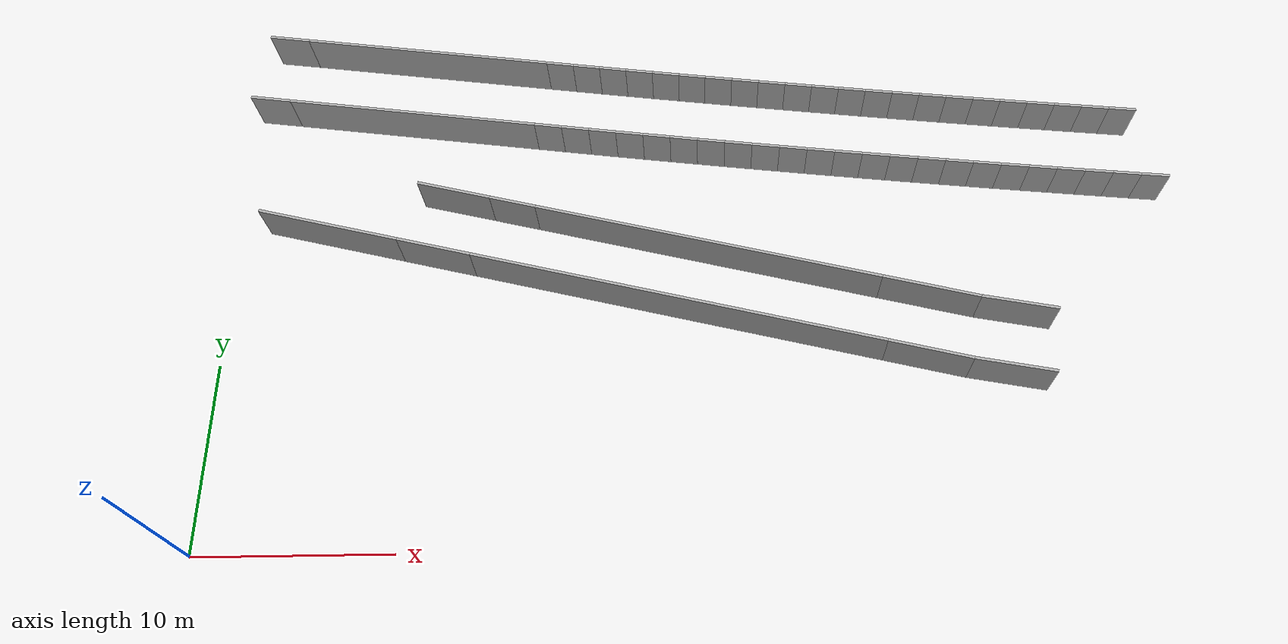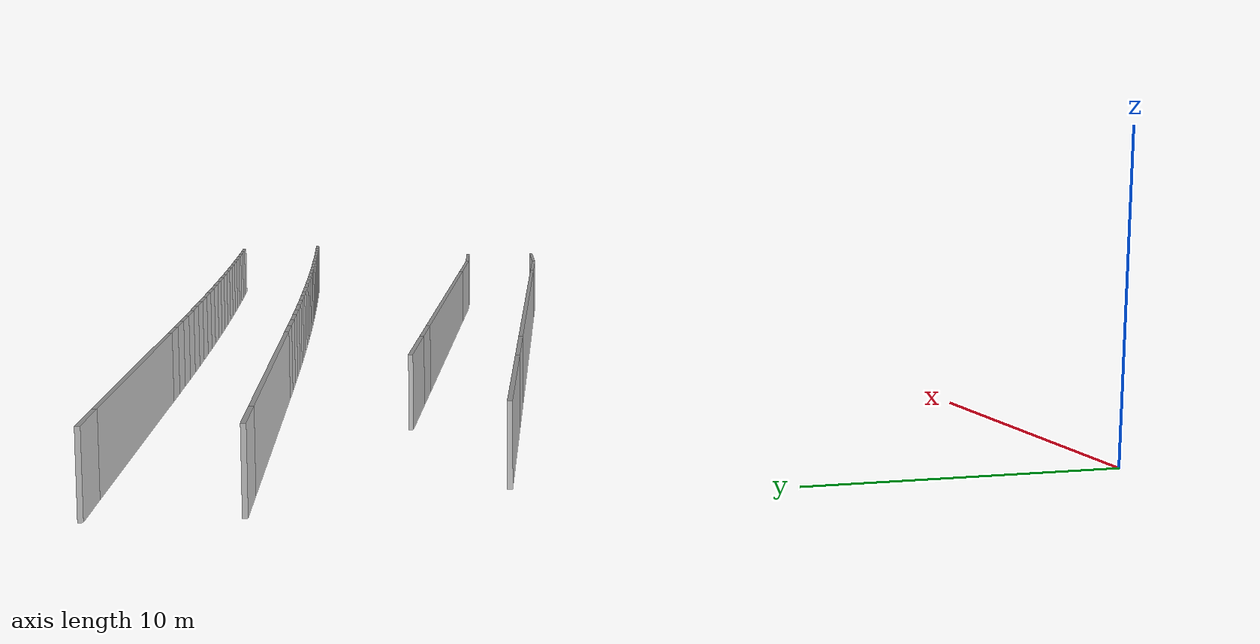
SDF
<?xml version="1.0" ?>
<sdf version="1.6">
  <model name="sps_2303">
    <pose frame="">0 0 0 0 -0 0</pose>
    <static>1</static>
    <self_collide>0</self_collide>
    <allow_auto_disable>0</allow_auto_disable>
    <link name="Wall52">
      <kinematic>0</kinematic>
      <gravity>1</gravity>
      <self_collide>0</self_collide>
      <collision name="collision">
        <geometry>
          <box>
            <size>4.38192 0.15 2.5</size>
          </box>
        </geometry>
        <pose frame="">0 0 0 0 -0 0</pose>
      </collision>
      <visual name="visual">
        <geometry>
          <box>
            <size>4.38192 0.15 2.5</size>
          </box>
        </geometry>
        <pose frame="">0 0 0 0 -0 0</pose>
        <cast_shadows>1</cast_shadows>
        <transparency>0.0</transparency>
      </visual>
      <pose frame="">36.597 9.30323 1.25 0 -0 2.9005</pose>
    </link>
    <link name="Wall53">
      <kinematic>0</kinematic>
      <gravity>1</gravity>
      <self_collide>0</self_collide>
      <collision name="collision">
        <geometry>
          <box>
            <size>22.0786 0.15 2.5</size>
          </box>
        </geometry>
        <pose frame="">0 0 0 0 -0 0</pose>
      </collision>
      <visual name="visual">
        <geometry>
          <box>
            <size>22.0786 0.15 2.5</size>
          </box>
        </geometry>
        <pose frame="">0 0 0 0 -0 0</pose>
        <cast_shadows>1</cast_shadows>
        <transparency>0.0</transparency>
      </visual>
      <pose frame="">23.7494 12.4621 1.25 0 -0 2.9005</pose>
    </link>
    <link name="Wall201">
      <kinematic>0</kinematic>
      <gravity>1</gravity>
      <self_collide>0</self_collide>
      <collision name="collision">
        <geometry>
          <box>
            <size>7.68454 0.15 2.5</size>
          </box>
        </geometry>
        <pose frame="">0 0 0 0 -0 0</pose>
      </collision>
      <visual name="visual">
        <geometry>
          <box>
            <size>7.68454 0.15 2.5</size>
          </box>
        </geometry>
        <pose frame="">0 0 0 0 -0 0</pose>
        <cast_shadows>1</cast_shadows>
        <transparency>0.0</transparency>
      </visual>
      <pose frame="">5.3868 16.9762 1.25 0 -0 2.90063</pose>
    </link>
    <link name="Wall234">
      <kinematic>0</kinematic>
      <gravity>1</gravity>
      <self_collide>0</self_collide>
      <collision name="collision">
        <geometry>
          <box>
            <size>13.7202 0.15 2.5</size>
          </box>
        </geometry>
        <pose frame="">0 0 0 0 -0 0</pose>
      </collision>
      <visual name="visual">
        <geometry>
          <box>
            <size>13.7202 0.15 2.5</size>
          </box>
        </geometry>
        <pose frame="">0 0 0 0 -0 0</pose>
        <cast_shadows>1</cast_shadows>
        <transparency>0.0</transparency>
      </visual>
      <pose frame="">9.80376 28.0759 1.25 0 0 -0.130338</pose>
    </link>
    <link name="Wall235">
      <kinematic>0</kinematic>
      <gravity>1</gravity>
      <self_collide>0</self_collide>
      <collision name="collision">
        <geometry>
          <box>
            <size>4.00645 0.15 2.5</size>
          </box>
        </geometry>
        <pose frame="">0 0 0 0 -0 0</pose>
      </collision>
      <visual name="visual">
        <geometry>
          <box>
            <size>4.00645 0.15 2.5</size>
          </box>
        </geometry>
        <pose frame="">0 0 0 0 -0 0</pose>
        <cast_shadows>1</cast_shadows>
        <transparency>0.0</transparency>
      </visual>
      <pose frame="">41.4386 11.8258 1.25 0 0 -0.188573</pose>
    </link>
    <link name="Wall302">
      <kinematic>0</kinematic>
      <gravity>1</gravity>
      <self_collide>0</self_collide>
      <collision name="collision">
        <geometry>
          <box>
            <size>4.02802 0.15 2.5</size>
          </box>
        </geometry>
        <pose frame="">0 0 0 0 -0 0</pose>
      </collision>
      <visual name="visual">
        <geometry>
          <box>
            <size>4.02802 0.15 2.5</size>
          </box>
        </geometry>
        <pose frame="">0 0 0 0 -0 0</pose>
        <cast_shadows>1</cast_shadows>
        <transparency>0.0</transparency>
      </visual>
      <pose frame="">11.9095 18.9778 1.25 0 0 -0.240793</pose>
    </link>
    <link name="Wall453">
      <kinematic>0</kinematic>
      <gravity>1</gravity>
      <self_collide>0</self_collide>
      <collision name="collision">
        <geometry>
          <box>
            <size>2.53132 0.15 2.5</size>
          </box>
        </geometry>
        <pose frame="">0 0 0 0 -0 0</pose>
      </collision>
      <visual name="visual">
        <geometry>
          <box>
            <size>2.53132 0.15 2.5</size>
          </box>
        </geometry>
        <pose frame="">0 0 0 0 -0 0</pose>
        <cast_shadows>1</cast_shadows>
        <transparency>0.0</transparency>
      </visual>
      <pose frame="">15.0945 18.1953 1.25 0 0 -0.24111</pose>
    </link>
    <link name="Wall454">
      <kinematic>0</kinematic>
      <gravity>1</gravity>
      <self_collide>0</self_collide>
      <collision name="collision">
        <geometry>
          <box>
            <size>18.6864 0.15 2.5</size>
          </box>
        </geometry>
        <pose frame="">0 0 0 0 -0 0</pose>
      </collision>
      <visual name="visual">
        <geometry>
          <box>
            <size>18.6864 0.15 2.5</size>
          </box>
        </geometry>
        <pose frame="">0 0 0 0 -0 0</pose>
        <cast_shadows>1</cast_shadows>
        <transparency>0.0</transparency>
      </visual>
      <pose frame="">25.3965 15.6621 1.25 0 0 -0.24111</pose>
    </link>
    <link name="Wall455">
      <kinematic>0</kinematic>
      <gravity>1</gravity>
      <self_collide>0</self_collide>
      <collision name="collision">
        <geometry>
          <box>
            <size>5.15039 0.15 2.5</size>
          </box>
        </geometry>
        <pose frame="">0 0 0 0 -0 0</pose>
      </collision>
      <visual name="visual">
        <geometry>
          <box>
            <size>5.15039 0.15 2.5</size>
          </box>
        </geometry>
        <pose frame="">0 0 0 0 -0 0</pose>
        <cast_shadows>1</cast_shadows>
        <transparency>0.0</transparency>
      </visual>
      <pose frame="">36.9701 12.8162 1.25 0 0 -0.24111</pose>
    </link>
    <link name="Wall557">
      <kinematic>0</kinematic>
      <gravity>1</gravity>
      <self_collide>0</self_collide>
      <collision name="collision">
        <geometry>
          <box>
            <size>4.02779 0.15 2.5</size>
          </box>
        </geometry>
        <pose frame="">0 0 0 0 -0 0</pose>
      </collision>
      <visual name="visual">
        <geometry>
          <box>
            <size>4.02779 0.15 2.5</size>
          </box>
        </geometry>
        <pose frame="">0 0 0 0 -0 0</pose>
        <cast_shadows>1</cast_shadows>
        <transparency>0.0</transparency>
      </visual>
      <pose frame="">11.0738 15.5786 1.25 0 -0 2.90058</pose>
    </link>
    <link name="Wall558">
      <kinematic>0</kinematic>
      <gravity>1</gravity>
      <self_collide>0</self_collide>
      <collision name="collision">
        <geometry>
          <box>
            <size>4.19529 0.15 2.5</size>
          </box>
        </geometry>
        <pose frame="">0 0 0 0 -0 0</pose>
      </collision>
      <visual name="visual">
        <geometry>
          <box>
            <size>4.19529 0.15 2.5</size>
          </box>
        </geometry>
        <pose frame="">0 0 0 0 -0 0</pose>
        <cast_shadows>1</cast_shadows>
        <transparency>0.0</transparency>
      </visual>
      <pose frame="">40.7851 8.38719 1.25 0 -0 2.95317</pose>
    </link>
    <link name="Wall629">
      <kinematic>0</kinematic>
      <gravity>1</gravity>
      <self_collide>0</self_collide>
      <collision name="collision">
        <geometry>
          <box>
            <size>13.7199 0.15 2.5</size>
          </box>
        </geometry>
        <pose frame="">0 0 0 0 -0 0</pose>
      </collision>
      <visual name="visual">
        <geometry>
          <box>
            <size>13.7199 0.15 2.5</size>
          </box>
        </geometry>
        <pose frame="">0 0 0 0 -0 0</pose>
        <cast_shadows>1</cast_shadows>
        <transparency>0.0</transparency>
      </visual>
      <pose frame="">9.26546 23.9708 1.25 0 -0 3.0113</pose>
    </link>
    <link name="Wall3582">
      <kinematic>0</kinematic>
      <gravity>1</gravity>
      <self_collide>0</self_collide>
      <collision name="collision">
        <geometry>
          <box>
            <size>1.49649 0.15 2.5</size>
          </box>
        </geometry>
        <pose frame="">0 0 0 0 -0 0</pose>
      </collision>
      <visual name="visual">
        <geometry>
          <box>
            <size>1.49649 0.15 2.5</size>
          </box>
        </geometry>
        <pose frame="">0 0 0 0 -0 0</pose>
        <cast_shadows>1</cast_shadows>
        <transparency>0.0</transparency>
      </visual>
      <pose frame="">17.3476 27.0869 1.25 0 0 -0.130517</pose>
    </link>
    <link name="Wall3583">
      <kinematic>0</kinematic>
      <gravity>1</gravity>
      <self_collide>0</self_collide>
      <collision name="collision">
        <geometry>
          <box>
            <size>1.49658 0.15 2.5</size>
          </box>
        </geometry>
        <pose frame="">0 0 0 0 -0 0</pose>
      </collision>
      <visual name="visual">
        <geometry>
          <box>
            <size>1.49658 0.15 2.5</size>
          </box>
        </geometry>
        <pose frame="">0 0 0 0 -0 0</pose>
        <cast_shadows>1</cast_shadows>
        <transparency>0.0</transparency>
      </visual>
      <pose frame="">18.8315 26.8934 1.25 0 0 -0.128781</pose>
    </link>
    <link name="Wall3584">
      <kinematic>0</kinematic>
      <gravity>1</gravity>
      <self_collide>0</self_collide>
      <collision name="collision">
        <geometry>
          <box>
            <size>1.49655 0.15 2.5</size>
          </box>
        </geometry>
        <pose frame="">0 0 0 0 -0 0</pose>
      </collision>
      <visual name="visual">
        <geometry>
          <box>
            <size>1.49655 0.15 2.5</size>
          </box>
        </geometry>
        <pose frame="">0 0 0 0 -0 0</pose>
        <cast_shadows>1</cast_shadows>
        <transparency>0.0</transparency>
      </visual>
      <pose frame="">20.3158 26.7023 1.25 0 0 -0.127304</pose>
    </link>
    <link name="Wall3585">
      <kinematic>0</kinematic>
      <gravity>1</gravity>
      <self_collide>0</self_collide>
      <collision name="collision">
        <geometry>
          <box>
            <size>1.49645 0.15 2.5</size>
          </box>
        </geometry>
        <pose frame="">0 0 0 0 -0 0</pose>
      </collision>
      <visual name="visual">
        <geometry>
          <box>
            <size>1.49645 0.15 2.5</size>
          </box>
        </geometry>
        <pose frame="">0 0 0 0 -0 0</pose>
        <cast_shadows>1</cast_shadows>
        <transparency>0.0</transparency>
      </visual>
      <pose frame="">21.8004 26.5134 1.25 0 0 -0.125832</pose>
    </link>
    <link name="Wall3586">
      <kinematic>0</kinematic>
      <gravity>1</gravity>
      <self_collide>0</self_collide>
      <collision name="collision">
        <geometry>
          <box>
            <size>1.49652 0.15 2.5</size>
          </box>
        </geometry>
        <pose frame="">0 0 0 0 -0 0</pose>
      </collision>
      <visual name="visual">
        <geometry>
          <box>
            <size>1.49652 0.15 2.5</size>
          </box>
        </geometry>
        <pose frame="">0 0 0 0 -0 0</pose>
        <cast_shadows>1</cast_shadows>
        <transparency>0.0</transparency>
      </visual>
      <pose frame="">23.2852 26.3268 1.25 0 0 -0.124223</pose>
    </link>
    <link name="Wall3587">
      <kinematic>0</kinematic>
      <gravity>1</gravity>
      <self_collide>0</self_collide>
      <collision name="collision">
        <geometry>
          <box>
            <size>1.49664 0.15 2.5</size>
          </box>
        </geometry>
        <pose frame="">0 0 0 0 -0 0</pose>
      </collision>
      <visual name="visual">
        <geometry>
          <box>
            <size>1.49664 0.15 2.5</size>
          </box>
        </geometry>
        <pose frame="">0 0 0 0 -0 0</pose>
        <cast_shadows>1</cast_shadows>
        <transparency>0.0</transparency>
      </visual>
      <pose frame="">24.7704 26.1426 1.25 0 0 -0.122569</pose>
    </link>
    <link name="Wall3588">
      <kinematic>0</kinematic>
      <gravity>1</gravity>
      <self_collide>0</self_collide>
      <collision name="collision">
        <geometry>
          <box>
            <size>1.49656 0.15 2.5</size>
          </box>
        </geometry>
        <pose frame="">0 0 0 0 -0 0</pose>
      </collision>
      <visual name="visual">
        <geometry>
          <box>
            <size>1.49656 0.15 2.5</size>
          </box>
        </geometry>
        <pose frame="">0 0 0 0 -0 0</pose>
        <cast_shadows>1</cast_shadows>
        <transparency>0.0</transparency>
      </visual>
      <pose frame="">26.2559 25.9607 1.25 0 0 -0.121097</pose>
    </link>
    <link name="Wall3589">
      <kinematic>0</kinematic>
      <gravity>1</gravity>
      <self_collide>0</self_collide>
      <collision name="collision">
        <geometry>
          <box>
            <size>1.49663 0.15 2.5</size>
          </box>
        </geometry>
        <pose frame="">0 0 0 0 -0 0</pose>
      </collision>
      <visual name="visual">
        <geometry>
          <box>
            <size>1.49663 0.15 2.5</size>
          </box>
        </geometry>
        <pose frame="">0 0 0 0 -0 0</pose>
        <cast_shadows>1</cast_shadows>
        <transparency>0.0</transparency>
      </visual>
      <pose frame="">27.7417 25.7811 1.25 0 0 -0.119489</pose>
    </link>
    <link name="Wall3590">
      <kinematic>0</kinematic>
      <gravity>1</gravity>
      <self_collide>0</self_collide>
      <collision name="collision">
        <geometry>
          <box>
            <size>1.49641 0.15 2.5</size>
          </box>
        </geometry>
        <pose frame="">0 0 0 0 -0 0</pose>
      </collision>
      <visual name="visual">
        <geometry>
          <box>
            <size>1.49641 0.15 2.5</size>
          </box>
        </geometry>
        <pose frame="">0 0 0 0 -0 0</pose>
        <cast_shadows>1</cast_shadows>
        <transparency>0.0</transparency>
      </visual>
      <pose frame="">29.2277 25.6039 1.25 0 0 -0.117905</pose>
    </link>
    <link name="Wall3591">
      <kinematic>0</kinematic>
      <gravity>1</gravity>
      <self_collide>0</self_collide>
      <collision name="collision">
        <geometry>
          <box>
            <size>1.49649 0.15 2.5</size>
          </box>
        </geometry>
        <pose frame="">0 0 0 0 -0 0</pose>
      </collision>
      <visual name="visual">
        <geometry>
          <box>
            <size>1.49649 0.15 2.5</size>
          </box>
        </geometry>
        <pose frame="">0 0 0 0 -0 0</pose>
        <cast_shadows>1</cast_shadows>
        <transparency>0.0</transparency>
      </visual>
      <pose frame="">30.7139 25.4291 1.25 0 0 -0.116256</pose>
    </link>
    <link name="Wall3592">
      <kinematic>0</kinematic>
      <gravity>1</gravity>
      <self_collide>0</self_collide>
      <collision name="collision">
        <geometry>
          <box>
            <size>1.49642 0.15 2.5</size>
          </box>
        </geometry>
        <pose frame="">0 0 0 0 -0 0</pose>
      </collision>
      <visual name="visual">
        <geometry>
          <box>
            <size>1.49642 0.15 2.5</size>
          </box>
        </geometry>
        <pose frame="">0 0 0 0 -0 0</pose>
        <cast_shadows>1</cast_shadows>
        <transparency>0.0</transparency>
      </visual>
      <pose frame="">32.2003 25.2566 1.25 0 0 -0.114783</pose>
    </link>
    <link name="Wall3593">
      <kinematic>0</kinematic>
      <gravity>1</gravity>
      <self_collide>0</self_collide>
      <collision name="collision">
        <geometry>
          <box>
            <size>1.49663 0.15 2.5</size>
          </box>
        </geometry>
        <pose frame="">0 0 0 0 -0 0</pose>
      </collision>
      <visual name="visual">
        <geometry>
          <box>
            <size>1.49663 0.15 2.5</size>
          </box>
        </geometry>
        <pose frame="">0 0 0 0 -0 0</pose>
        <cast_shadows>1</cast_shadows>
        <transparency>0.0</transparency>
      </visual>
      <pose frame="">33.6872 25.0864 1.25 0 0 -0.113166</pose>
    </link>
    <link name="Wall3594">
      <kinematic>0</kinematic>
      <gravity>1</gravity>
      <self_collide>0</self_collide>
      <collision name="collision">
        <geometry>
          <box>
            <size>1.49649 0.15 2.5</size>
          </box>
        </geometry>
        <pose frame="">0 0 0 0 -0 0</pose>
      </collision>
      <visual name="visual">
        <geometry>
          <box>
            <size>1.49649 0.15 2.5</size>
          </box>
        </geometry>
        <pose frame="">0 0 0 0 -0 0</pose>
        <cast_shadows>1</cast_shadows>
        <transparency>0.0</transparency>
      </visual>
      <pose frame="">35.1743 24.9186 1.25 0 0 -0.111576</pose>
    </link>
    <link name="Wall3595">
      <kinematic>0</kinematic>
      <gravity>1</gravity>
      <self_collide>0</self_collide>
      <collision name="collision">
        <geometry>
          <box>
            <size>1.49664 0.15 2.5</size>
          </box>
        </geometry>
        <pose frame="">0 0 0 0 -0 0</pose>
      </collision>
      <visual name="visual">
        <geometry>
          <box>
            <size>1.49664 0.15 2.5</size>
          </box>
        </geometry>
        <pose frame="">0 0 0 0 -0 0</pose>
        <cast_shadows>1</cast_shadows>
        <transparency>0.0</transparency>
      </visual>
      <pose frame="">36.6617 24.7532 1.25 0 0 -0.109923</pose>
    </link>
    <link name="Wall3596">
      <kinematic>0</kinematic>
      <gravity>1</gravity>
      <self_collide>0</self_collide>
      <collision name="collision">
        <geometry>
          <box>
            <size>1.49634 0.15 2.5</size>
          </box>
        </geometry>
        <pose frame="">0 0 0 0 -0 0</pose>
      </collision>
      <visual name="visual">
        <geometry>
          <box>
            <size>1.49634 0.15 2.5</size>
          </box>
        </geometry>
        <pose frame="">0 0 0 0 -0 0</pose>
        <cast_shadows>1</cast_shadows>
        <transparency>0.0</transparency>
      </visual>
      <pose frame="">38.1493 24.5901 1.25 0 0 -0.108468</pose>
    </link>
    <link name="Wall3597">
      <kinematic>0</kinematic>
      <gravity>1</gravity>
      <self_collide>0</self_collide>
      <collision name="collision">
        <geometry>
          <box>
            <size>1.49655 0.15 2.5</size>
          </box>
        </geometry>
        <pose frame="">0 0 0 0 -0 0</pose>
      </collision>
      <visual name="visual">
        <geometry>
          <box>
            <size>1.49655 0.15 2.5</size>
          </box>
        </geometry>
        <pose frame="">0 0 0 0 -0 0</pose>
        <cast_shadows>1</cast_shadows>
        <transparency>0.0</transparency>
      </visual>
      <pose frame="">39.637 24.4294 1.25 0 0 -0.10673</pose>
    </link>
    <link name="Wall3598">
      <kinematic>0</kinematic>
      <gravity>1</gravity>
      <self_collide>0</self_collide>
      <collision name="collision">
        <geometry>
          <box>
            <size>1.4965 0.15 2.5</size>
          </box>
        </geometry>
        <pose frame="">0 0 0 0 -0 0</pose>
      </collision>
      <visual name="visual">
        <geometry>
          <box>
            <size>1.4965 0.15 2.5</size>
          </box>
        </geometry>
        <pose frame="">0 0 0 0 -0 0</pose>
        <cast_shadows>1</cast_shadows>
        <transparency>0.0</transparency>
      </visual>
      <pose frame="">41.1252 24.2711 1.25 0 0 -0.105216</pose>
    </link>
    <link name="Wall3599">
      <kinematic>0</kinematic>
      <gravity>1</gravity>
      <self_collide>0</self_collide>
      <collision name="collision">
        <geometry>
          <box>
            <size>1.49662 0.15 2.5</size>
          </box>
        </geometry>
        <pose frame="">0 0 0 0 -0 0</pose>
      </collision>
      <visual name="visual">
        <geometry>
          <box>
            <size>1.49662 0.15 2.5</size>
          </box>
        </geometry>
        <pose frame="">0 0 0 0 -0 0</pose>
        <cast_shadows>1</cast_shadows>
        <transparency>0.0</transparency>
      </visual>
      <pose frame="">42.6136 24.1151 1.25 0 0 -0.10365</pose>
    </link>
    <link name="Wall3600">
      <kinematic>0</kinematic>
      <gravity>1</gravity>
      <self_collide>0</self_collide>
      <collision name="collision">
        <geometry>
          <box>
            <size>1.49655 0.15 2.5</size>
          </box>
        </geometry>
        <pose frame="">0 0 0 0 -0 0</pose>
      </collision>
      <visual name="visual">
        <geometry>
          <box>
            <size>1.49655 0.15 2.5</size>
          </box>
        </geometry>
        <pose frame="">0 0 0 0 -0 0</pose>
        <cast_shadows>1</cast_shadows>
        <transparency>0.0</transparency>
      </visual>
      <pose frame="">44.1023 23.9615 1.25 0 0 -0.102014</pose>
    </link>
    <link name="Wall3601">
      <kinematic>0</kinematic>
      <gravity>1</gravity>
      <self_collide>0</self_collide>
      <collision name="collision">
        <geometry>
          <box>
            <size>1.49656 0.15 2.5</size>
          </box>
        </geometry>
        <pose frame="">0 0 0 0 -0 0</pose>
      </collision>
      <visual name="visual">
        <geometry>
          <box>
            <size>1.49656 0.15 2.5</size>
          </box>
        </geometry>
        <pose frame="">0 0 0 0 -0 0</pose>
        <cast_shadows>1</cast_shadows>
        <transparency>0.0</transparency>
      </visual>
      <pose frame="">45.5911 23.8102 1.25 0 0 -0.100497</pose>
    </link>
    <link name="Wall3602">
      <kinematic>0</kinematic>
      <gravity>1</gravity>
      <self_collide>0</self_collide>
      <collision name="collision">
        <geometry>
          <box>
            <size>1.4965 0.15 2.5</size>
          </box>
        </geometry>
        <pose frame="">0 0 0 0 -0 0</pose>
      </collision>
      <visual name="visual">
        <geometry>
          <box>
            <size>1.4965 0.15 2.5</size>
          </box>
        </geometry>
        <pose frame="">0 0 0 0 -0 0</pose>
        <cast_shadows>1</cast_shadows>
        <transparency>0.0</transparency>
      </visual>
      <pose frame="">47.0803 23.6613 1.25 0 0 -0.0988205</pose>
    </link>
    <link name="Wall3603">
      <kinematic>0</kinematic>
      <gravity>1</gravity>
      <self_collide>0</self_collide>
      <collision name="collision">
        <geometry>
          <box>
            <size>1.49648 0.15 2.5</size>
          </box>
        </geometry>
        <pose frame="">0 0 0 0 -0 0</pose>
      </collision>
      <visual name="visual">
        <geometry>
          <box>
            <size>1.49648 0.15 2.5</size>
          </box>
        </geometry>
        <pose frame="">0 0 0 0 -0 0</pose>
        <cast_shadows>1</cast_shadows>
        <transparency>0.0</transparency>
      </visual>
      <pose frame="">48.5695 23.5147 1.25 0 0 -0.0974284</pose>
    </link>
    <link name="Wall7357">
      <kinematic>0</kinematic>
      <gravity>1</gravity>
      <self_collide>0</self_collide>
      <collision name="collision">
        <geometry>
          <box>
            <size>1.50314 0.15 2.5</size>
          </box>
        </geometry>
        <pose frame="">0 0 0 0 -0 0</pose>
      </collision>
      <visual name="visual">
        <geometry>
          <box>
            <size>1.50314 0.15 2.5</size>
          </box>
        </geometry>
        <pose frame="">0 0 0 0 -0 0</pose>
        <cast_shadows>1</cast_shadows>
        <transparency>0.0</transparency>
      </visual>
      <pose frame="">16.8125 22.9817 1.25 0 0 -0.13051</pose>
    </link>
    <link name="Wall7358">
      <kinematic>0</kinematic>
      <gravity>1</gravity>
      <self_collide>0</self_collide>
      <collision name="collision">
        <geometry>
          <box>
            <size>1.50309 0.15 2.5</size>
          </box>
        </geometry>
        <pose frame="">0 0 0 0 -0 0</pose>
      </collision>
      <visual name="visual">
        <geometry>
          <box>
            <size>1.50309 0.15 2.5</size>
          </box>
        </geometry>
        <pose frame="">0 0 0 0 -0 0</pose>
        <cast_shadows>1</cast_shadows>
        <transparency>0.0</transparency>
      </visual>
      <pose frame="">18.3029 22.7872 1.25 0 0 -0.128999</pose>
    </link>
    <link name="Wall7359">
      <kinematic>0</kinematic>
      <gravity>1</gravity>
      <self_collide>0</self_collide>
      <collision name="collision">
        <geometry>
          <box>
            <size>1.503 0.15 2.5</size>
          </box>
        </geometry>
        <pose frame="">0 0 0 0 -0 0</pose>
      </collision>
      <visual name="visual">
        <geometry>
          <box>
            <size>1.503 0.15 2.5</size>
          </box>
        </geometry>
        <pose frame="">0 0 0 0 -0 0</pose>
        <cast_shadows>1</cast_shadows>
        <transparency>0.0</transparency>
      </visual>
      <pose frame="">19.7937 22.5951 1.25 0 0 -0.127286</pose>
    </link>
    <link name="Wall7360">
      <kinematic>0</kinematic>
      <gravity>1</gravity>
      <self_collide>0</self_collide>
      <collision name="collision">
        <geometry>
          <box>
            <size>1.50306 0.15 2.5</size>
          </box>
        </geometry>
        <pose frame="">0 0 0 0 -0 0</pose>
      </collision>
      <visual name="visual">
        <geometry>
          <box>
            <size>1.50306 0.15 2.5</size>
          </box>
        </geometry>
        <pose frame="">0 0 0 0 -0 0</pose>
        <cast_shadows>1</cast_shadows>
        <transparency>0.0</transparency>
      </visual>
      <pose frame="">21.2847 22.4053 1.25 0 0 -0.125972</pose>
    </link>
    <link name="Wall7361">
      <kinematic>0</kinematic>
      <gravity>1</gravity>
      <self_collide>0</self_collide>
      <collision name="collision">
        <geometry>
          <box>
            <size>1.50297 0.15 2.5</size>
          </box>
        </geometry>
        <pose frame="">0 0 0 0 -0 0</pose>
      </collision>
      <visual name="visual">
        <geometry>
          <box>
            <size>1.50297 0.15 2.5</size>
          </box>
        </geometry>
        <pose frame="">0 0 0 0 -0 0</pose>
        <cast_shadows>1</cast_shadows>
        <transparency>0.0</transparency>
      </visual>
      <pose frame="">22.7759 22.2178 1.25 0 0 -0.124179</pose>
    </link>
    <link name="Wall7362">
      <kinematic>0</kinematic>
      <gravity>1</gravity>
      <self_collide>0</self_collide>
      <collision name="collision">
        <geometry>
          <box>
            <size>1.50329 0.15 2.5</size>
          </box>
        </geometry>
        <pose frame="">0 0 0 0 -0 0</pose>
      </collision>
      <visual name="visual">
        <geometry>
          <box>
            <size>1.50329 0.15 2.5</size>
          </box>
        </geometry>
        <pose frame="">0 0 0 0 -0 0</pose>
        <cast_shadows>1</cast_shadows>
        <transparency>0.0</transparency>
      </visual>
      <pose frame="">24.2676 22.0328 1.25 0 0 -0.122597</pose>
    </link>
    <link name="Wall7363">
      <kinematic>0</kinematic>
      <gravity>1</gravity>
      <self_collide>0</self_collide>
      <collision name="collision">
        <geometry>
          <box>
            <size>1.50301 0.15 2.5</size>
          </box>
        </geometry>
        <pose frame="">0 0 0 0 -0 0</pose>
      </collision>
      <visual name="visual">
        <geometry>
          <box>
            <size>1.50301 0.15 2.5</size>
          </box>
        </geometry>
        <pose frame="">0 0 0 0 -0 0</pose>
        <cast_shadows>1</cast_shadows>
        <transparency>0.0</transparency>
      </visual>
      <pose frame="">25.7596 21.8501 1.25 0 0 -0.121106</pose>
    </link>
    <link name="Wall7364">
      <kinematic>0</kinematic>
      <gravity>1</gravity>
      <self_collide>0</self_collide>
      <collision name="collision">
        <geometry>
          <box>
            <size>1.50297 0.15 2.5</size>
          </box>
        </geometry>
        <pose frame="">0 0 0 0 -0 0</pose>
      </collision>
      <visual name="visual">
        <geometry>
          <box>
            <size>1.50297 0.15 2.5</size>
          </box>
        </geometry>
        <pose frame="">0 0 0 0 -0 0</pose>
        <cast_shadows>1</cast_shadows>
        <transparency>0.0</transparency>
      </visual>
      <pose frame="">27.2518 21.6697 1.25 0 0 -0.119514</pose>
    </link>
    <link name="Wall7365">
      <kinematic>0</kinematic>
      <gravity>1</gravity>
      <self_collide>0</self_collide>
      <collision name="collision">
        <geometry>
          <box>
            <size>1.50323 0.15 2.5</size>
          </box>
        </geometry>
        <pose frame="">0 0 0 0 -0 0</pose>
      </collision>
      <visual name="visual">
        <geometry>
          <box>
            <size>1.50323 0.15 2.5</size>
          </box>
        </geometry>
        <pose frame="">0 0 0 0 -0 0</pose>
        <cast_shadows>1</cast_shadows>
        <transparency>0.0</transparency>
      </visual>
      <pose frame="">28.7443 21.4917 1.25 0 0 -0.117899</pose>
    </link>
    <link name="Wall7366">
      <kinematic>0</kinematic>
      <gravity>1</gravity>
      <self_collide>0</self_collide>
      <collision name="collision">
        <geometry>
          <box>
            <size>1.50295 0.15 2.5</size>
          </box>
        </geometry>
        <pose frame="">0 0 0 0 -0 0</pose>
      </collision>
      <visual name="visual">
        <geometry>
          <box>
            <size>1.50295 0.15 2.5</size>
          </box>
        </geometry>
        <pose frame="">0 0 0 0 -0 0</pose>
        <cast_shadows>1</cast_shadows>
        <transparency>0.0</transparency>
      </visual>
      <pose frame="">30.2371 21.3161 1.25 0 0 -0.116285</pose>
    </link>
    <link name="Wall7367">
      <kinematic>0</kinematic>
      <gravity>1</gravity>
      <self_collide>0</self_collide>
      <collision name="collision">
        <geometry>
          <box>
            <size>1.50322 0.15 2.5</size>
          </box>
        </geometry>
        <pose frame="">0 0 0 0 -0 0</pose>
      </collision>
      <visual name="visual">
        <geometry>
          <box>
            <size>1.50322 0.15 2.5</size>
          </box>
        </geometry>
        <pose frame="">0 0 0 0 -0 0</pose>
        <cast_shadows>1</cast_shadows>
        <transparency>0.0</transparency>
      </visual>
      <pose frame="">31.7302 21.1429 1.25 0 0 -0.11467</pose>
    </link>
    <link name="Wall7368">
      <kinematic>0</kinematic>
      <gravity>1</gravity>
      <self_collide>0</self_collide>
      <collision name="collision">
        <geometry>
          <box>
            <size>1.50303 0.15 2.5</size>
          </box>
        </geometry>
        <pose frame="">0 0 0 0 -0 0</pose>
      </collision>
      <visual name="visual">
        <geometry>
          <box>
            <size>1.50303 0.15 2.5</size>
          </box>
        </geometry>
        <pose frame="">0 0 0 0 -0 0</pose>
        <cast_shadows>1</cast_shadows>
        <transparency>0.0</transparency>
      </visual>
      <pose frame="">33.2235 20.972 1.25 0 0 -0.113213</pose>
    </link>
    <link name="Wall7369">
      <kinematic>0</kinematic>
      <gravity>1</gravity>
      <self_collide>0</self_collide>
      <collision name="collision">
        <geometry>
          <box>
            <size>1.50295 0.15 2.5</size>
          </box>
        </geometry>
        <pose frame="">0 0 0 0 -0 0</pose>
      </collision>
      <visual name="visual">
        <geometry>
          <box>
            <size>1.50295 0.15 2.5</size>
          </box>
        </geometry>
        <pose frame="">0 0 0 0 -0 0</pose>
        <cast_shadows>1</cast_shadows>
        <transparency>0.0</transparency>
      </visual>
      <pose frame="">34.717 20.8034 1.25 0 0 -0.111626</pose>
    </link>
    <link name="Wall7370">
      <kinematic>0</kinematic>
      <gravity>1</gravity>
      <self_collide>0</self_collide>
      <collision name="collision">
        <geometry>
          <box>
            <size>1.50326 0.15 2.5</size>
          </box>
        </geometry>
        <pose frame="">0 0 0 0 -0 0</pose>
      </collision>
      <visual name="visual">
        <geometry>
          <box>
            <size>1.50326 0.15 2.5</size>
          </box>
        </geometry>
        <pose frame="">0 0 0 0 -0 0</pose>
        <cast_shadows>1</cast_shadows>
        <transparency>0.0</transparency>
      </visual>
      <pose frame="">36.2109 20.6373 1.25 0 0 -0.109846</pose>
    </link>
    <link name="Wall7371">
      <kinematic>0</kinematic>
      <gravity>1</gravity>
      <self_collide>0</self_collide>
      <collision name="collision">
        <geometry>
          <box>
            <size>1.50302 0.15 2.5</size>
          </box>
        </geometry>
        <pose frame="">0 0 0 0 -0 0</pose>
      </collision>
      <visual name="visual">
        <geometry>
          <box>
            <size>1.50302 0.15 2.5</size>
          </box>
        </geometry>
        <pose frame="">0 0 0 0 -0 0</pose>
        <cast_shadows>1</cast_shadows>
        <transparency>0.0</transparency>
      </visual>
      <pose frame="">37.7051 20.4736 1.25 0 0 -0.108393</pose>
    </link>
    <link name="Wall7372">
      <kinematic>0</kinematic>
      <gravity>1</gravity>
      <self_collide>0</self_collide>
      <collision name="collision">
        <geometry>
          <box>
            <size>1.50301 0.15 2.5</size>
          </box>
        </geometry>
        <pose frame="">0 0 0 0 -0 0</pose>
      </collision>
      <visual name="visual">
        <geometry>
          <box>
            <size>1.50301 0.15 2.5</size>
          </box>
        </geometry>
        <pose frame="">0 0 0 0 -0 0</pose>
        <cast_shadows>1</cast_shadows>
        <transparency>0.0</transparency>
      </visual>
      <pose frame="">39.1995 20.3122 1.25 0 0 -0.106801</pose>
    </link>
    <link name="Wall7373">
      <kinematic>0</kinematic>
      <gravity>1</gravity>
      <self_collide>0</self_collide>
      <collision name="collision">
        <geometry>
          <box>
            <size>1.50305 0.15 2.5</size>
          </box>
        </geometry>
        <pose frame="">0 0 0 0 -0 0</pose>
      </collision>
      <visual name="visual">
        <geometry>
          <box>
            <size>1.50305 0.15 2.5</size>
          </box>
        </geometry>
        <pose frame="">0 0 0 0 -0 0</pose>
        <cast_shadows>1</cast_shadows>
        <transparency>0.0</transparency>
      </visual>
      <pose frame="">40.6941 20.1532 1.25 0 0 -0.105164</pose>
    </link>
    <link name="Wall7374">
      <kinematic>0</kinematic>
      <gravity>1</gravity>
      <self_collide>0</self_collide>
      <collision name="collision">
        <geometry>
          <box>
            <size>1.50313 0.15 2.5</size>
          </box>
        </geometry>
        <pose frame="">0 0 0 0 -0 0</pose>
      </collision>
      <visual name="visual">
        <geometry>
          <box>
            <size>1.50313 0.15 2.5</size>
          </box>
        </geometry>
        <pose frame="">0 0 0 0 -0 0</pose>
        <cast_shadows>1</cast_shadows>
        <transparency>0.0</transparency>
      </visual>
      <pose frame="">42.189 19.9965 1.25 0 0 -0.103689</pose>
    </link>
    <link name="Wall7375">
      <kinematic>0</kinematic>
      <gravity>1</gravity>
      <self_collide>0</self_collide>
      <collision name="collision">
        <geometry>
          <box>
            <size>1.50301 0.15 2.5</size>
          </box>
        </geometry>
        <pose frame="">0 0 0 0 -0 0</pose>
      </collision>
      <visual name="visual">
        <geometry>
          <box>
            <size>1.50301 0.15 2.5</size>
          </box>
        </geometry>
        <pose frame="">0 0 0 0 -0 0</pose>
        <cast_shadows>1</cast_shadows>
        <transparency>0.0</transparency>
      </visual>
      <pose frame="">43.6841 19.8421 1.25 0 0 -0.102105</pose>
    </link>
    <link name="Wall7376">
      <kinematic>0</kinematic>
      <gravity>1</gravity>
      <self_collide>0</self_collide>
      <collision name="collision">
        <geometry>
          <box>
            <size>1.50319 0.15 2.5</size>
          </box>
        </geometry>
        <pose frame="">0 0 0 0 -0 0</pose>
      </collision>
      <visual name="visual">
        <geometry>
          <box>
            <size>1.50319 0.15 2.5</size>
          </box>
        </geometry>
        <pose frame="">0 0 0 0 -0 0</pose>
        <cast_shadows>1</cast_shadows>
        <transparency>0.0</transparency>
      </visual>
      <pose frame="">45.1795 19.6901 1.25 0 0 -0.100501</pose>
    </link>
    <link name="Wall7377">
      <kinematic>0</kinematic>
      <gravity>1</gravity>
      <self_collide>0</self_collide>
      <collision name="collision">
        <geometry>
          <box>
            <size>1.50313 0.15 2.5</size>
          </box>
        </geometry>
        <pose frame="">0 0 0 0 -0 0</pose>
      </collision>
      <visual name="visual">
        <geometry>
          <box>
            <size>1.50313 0.15 2.5</size>
          </box>
        </geometry>
        <pose frame="">0 0 0 0 -0 0</pose>
        <cast_shadows>1</cast_shadows>
        <transparency>0.0</transparency>
      </visual>
      <pose frame="">46.6752 19.5405 1.25 0 0 -0.0988727</pose>
    </link>
    <link name="Wall7378">
      <kinematic>0</kinematic>
      <gravity>1</gravity>
      <self_collide>0</self_collide>
      <collision name="collision">
        <geometry>
          <box>
            <size>1.50308 0.15 2.5</size>
          </box>
        </geometry>
        <pose frame="">0 0 0 0 -0 0</pose>
      </collision>
      <visual name="visual">
        <geometry>
          <box>
            <size>1.50308 0.15 2.5</size>
          </box>
        </geometry>
        <pose frame="">0 0 0 0 -0 0</pose>
        <cast_shadows>1</cast_shadows>
        <transparency>0.0</transparency>
      </visual>
      <pose frame="">48.171 19.3933 1.25 0 0 -0.0973252</pose>
    </link>
    <link name="Wall7379">
      <kinematic>0</kinematic>
      <gravity>1</gravity>
      <self_collide>0</self_collide>
      <collision name="collision">
        <geometry>
          <box>
            <size>1.50309 0.15 2.5</size>
          </box>
        </geometry>
        <pose frame="">0 0 0 0 -0 0</pose>
      </collision>
      <visual name="visual">
        <geometry>
          <box>
            <size>1.50309 0.15 2.5</size>
          </box>
        </geometry>
        <pose frame="">0 0 0 0 -0 0</pose>
        <cast_shadows>1</cast_shadows>
        <transparency>0.0</transparency>
      </visual>
      <pose frame="">49.6671 19.2485 1.25 0 0 -0.0956524</pose>
    </link>
    <link name="Wall8193">
      <kinematic>0</kinematic>
      <gravity>1</gravity>
      <self_collide>0</self_collide>
      <collision name="collision">
        <geometry>
          <box>
            <size>2.22313 0.15 2.5</size>
          </box>
        </geometry>
        <pose frame="">0 0 0 0 -0 0</pose>
      </collision>
      <visual name="visual">
        <geometry>
          <box>
            <size>2.22313 0.15 2.5</size>
          </box>
        </geometry>
        <pose frame="">0 0 0 0 -0 0</pose>
        <cast_shadows>1</cast_shadows>
        <transparency>0.0</transparency>
      </visual>
      <pose frame="">1.89925 29.1084 1.25 0 0 -0.1271</pose>
    </link>
    <link name="Wall8874">
      <kinematic>0</kinematic>
      <gravity>1</gravity>
      <self_collide>0</self_collide>
      <collision name="collision">
        <geometry>
          <box>
            <size>2.23131 0.15 2.5</size>
          </box>
        </geometry>
        <pose frame="">0 0 0 0 -0 0</pose>
      </collision>
      <visual name="visual">
        <geometry>
          <box>
            <size>2.23131 0.15 2.5</size>
          </box>
        </geometry>
        <pose frame="">0 0 0 0 -0 0</pose>
        <cast_shadows>1</cast_shadows>
        <transparency>0.0</transparency>
      </visual>
      <pose frame="">1.35726 25.0056 1.25 0 0 -0.129003</pose>
    </link>
  </model>
</sdf>
